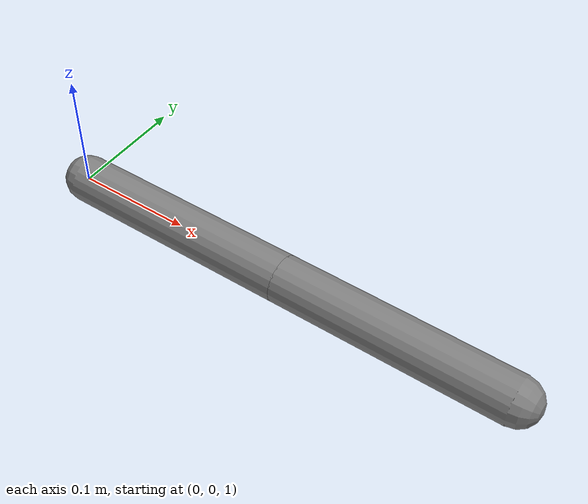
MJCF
<mujoco model="actuators_transmissions">
  <compiler angle="radian"/>
  <worldbody>
    <body name="j1_body" pos="0 0 1">
      <joint name="j1" type="hinge" axis="0 0 1"/>
      <geom name="j1_g" type="capsule" size="0.02" fromto="0 0 0 0.2 0 0"/>
      <body name="j2_body" pos="0.2 0 0">
        <joint name="j2" type="hinge" axis="0 0 1"/>
        <geom name="j2_g" type="capsule" size="0.02" fromto="0 0 0 0.2 0 0"/>
        <site name="tip_site" pos="0.2 0 0" size="0.01"/>
      </body>
    </body>
    <site name="anchor" pos="0 0 1" size="0.01"/>
  </worldbody>
  <tendon>
    <spatial name="td" width="0.005">
      <site site="anchor"/>
      <site site="tip_site"/>
    </spatial>
  </tendon>
  <actuator>
    <motor name="m_j1" joint="j1" ctrlrange="-1 1" gear="2"/>
    <position name="p_j2" joint="j2" kp="10" ctrlrange="-1.5 1.5"/>
    <velocity name="v_j1" joint="j1" kv="0.5"/>
    <general name="g_j2" joint="j2" gainprm="5 0 0" biasprm="0 -5 0" ctrlrange="-1 1"/>
    <motor name="m_td" tendon="td" ctrlrange="-2 2"/>
  </actuator>
</mujoco>
